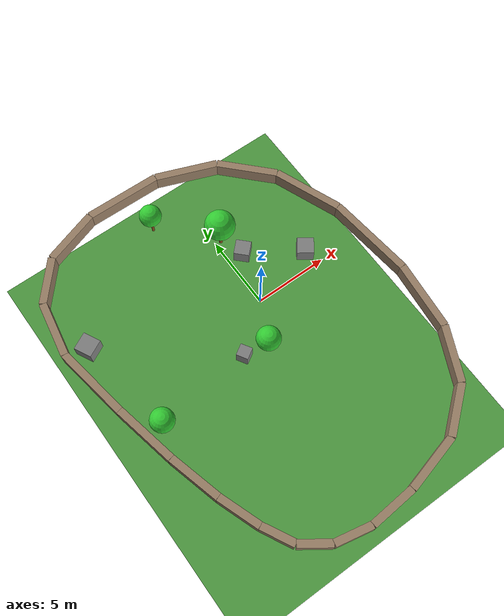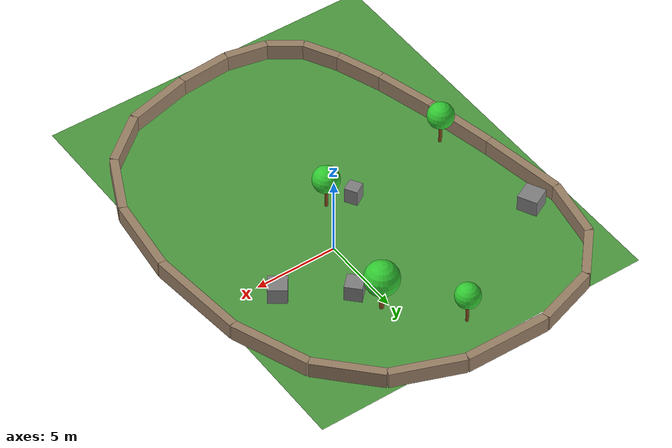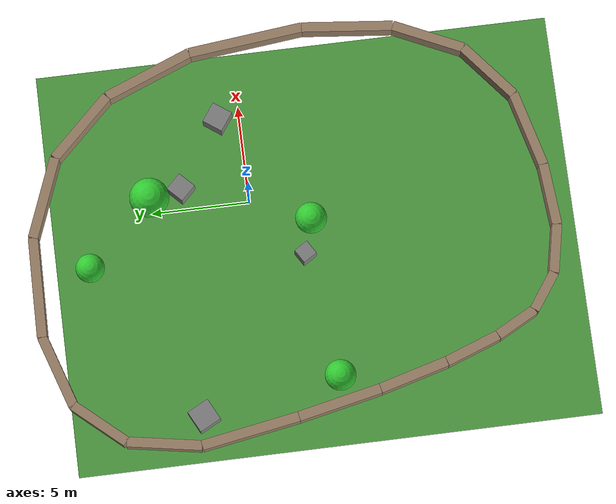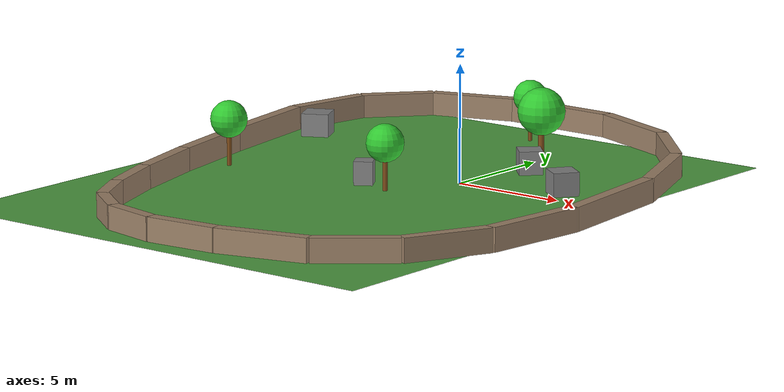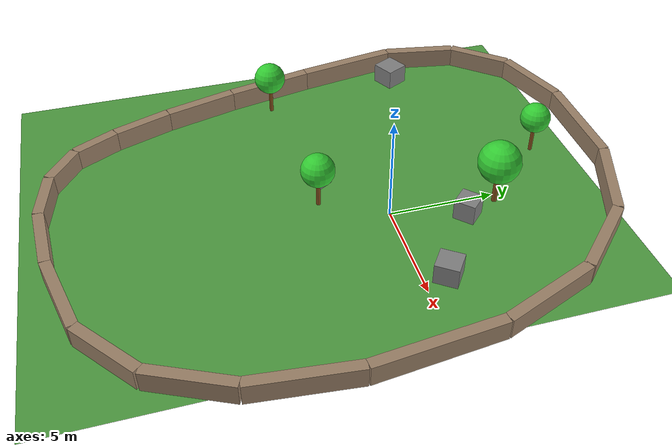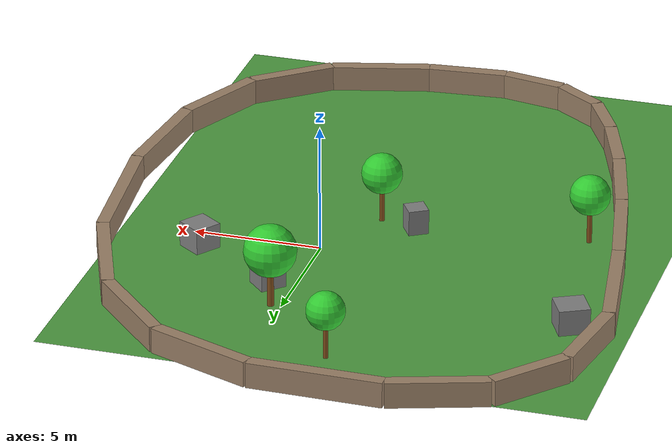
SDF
<?xml version="1.0" ?>
<sdf version="1.6">
  <world name="eval_lvl4_ep000">
    <light name="sun" type="directional">
      <cast_shadows>true</cast_shadows>
      <diffuse>0.8 0.8 0.8 1</diffuse>
      <specular>0.2 0.2 0.2 1</specular>
      <pose>0 0 10 0 0 0</pose>
      <direction>-0.5 0.5 -1</direction>
    </light>
    <include>
      <uri>model://ground_plane</uri>
    </include>
    <physics type="ode">
      <max_step_size>0.001</max_step_size>
      <real_time_factor>1</real_time_factor>
      <real_time_update_rate>1000</real_time_update_rate>
    </physics>
    <gravity>0 0 -9.8</gravity>
    <atmosphere type="adiabatic"/>
    <scene>
      <ambient>0.4 0.4 0.4 1</ambient>
      <background>0.7 0.7 0.7 1</background>
      <shadows>1</shadows>
    </scene>
    <model name="eval_lvl4_ep000_field">
      <static>true</static>
      <link name="link">
        <collision name="collision">
          <geometry>
            <plane>
              <normal>0 0 1</normal>
              <size>20.725738385255347 26.424078271899496</size>
            </plane>
          </geometry>
        </collision>
        <visual name="visual">
          <geometry>
            <plane>
              <normal>0 0 1</normal>
              <size>20.725738385255347 26.424078271899496</size>
            </plane>
          </geometry>
          <material>
            <script>
              <uri>file://media/materials/scripts/gazebo.material</uri>
              <name>Gazebo/Grass</name>
            </script>
          </material>
        </visual>
      </link>
      <pose>-2.541341288482038 -3.0848154407517376 0.01 0 0 0</pose>
    </model>
    <model name="eval_lvl4_ep000_boundary_0">
      <static>true</static>
      <pose>-11.716643249739564 1.3379400346052193 0.5 0 0 -1.4021891578027275</pose>
      <link name="link">
        <collision name="collision">
          <geometry>
            <box>
              <size>5.032900837519444 0.5 1.0</size>
            </box>
          </geometry>
        </collision>
        <visual name="visual">
          <geometry>
            <box>
              <size>5.032900837519444 0.5 1.0</size>
            </box>
          </geometry>
          <material>
            <ambient>0.4 0.3 0.2 1</ambient>
            <diffuse>0.6 0.5 0.4 1</diffuse>
          </material>
        </visual>
      </link>
    </model>
    <model name="eval_lvl4_ep000_boundary_1">
      <static>true</static>
      <pose>-10.845804181789788 -3.2512469907942756 0.5 0 0 -1.361177042258821</pose>
      <link name="link">
        <collision name="collision">
          <geometry>
            <box>
              <size>4.311214079445698 0.5 1.0</size>
            </box>
          </geometry>
        </collision>
        <visual name="visual">
          <geometry>
            <box>
              <size>4.311214079445698 0.5 1.0</size>
            </box>
          </geometry>
          <material>
            <ambient>0.4 0.3 0.2 1</ambient>
            <diffuse>0.6 0.5 0.4 1</diffuse>
          </material>
        </visual>
      </link>
    </model>
    <model name="eval_lvl4_ep000_boundary_2">
      <static>true</static>
      <pose>-9.922423443494903 -7.095744963195127 0.5 0 0 -1.3038204703218987</pose>
      <link name="link">
        <collision name="collision">
          <geometry>
            <box>
              <size>3.599678827739364 0.5 1.0</size>
            </box>
          </geometry>
        </collision>
        <visual name="visual">
          <geometry>
            <box>
              <size>3.599678827739364 0.5 1.0</size>
            </box>
          </geometry>
          <material>
            <ambient>0.4 0.3 0.2 1</ambient>
            <diffuse>0.6 0.5 0.4 1</diffuse>
          </material>
        </visual>
      </link>
    </model>
    <model name="eval_lvl4_ep000_boundary_3">
      <static>true</static>
      <pose>-8.946501034854915 -10.195553882597334 0.5 0 0 -1.218665584326815</pose>
      <link name="link">
        <collision name="collision">
          <geometry>
            <box>
              <size>2.9057620880754538 0.5 1.0</size>
            </box>
          </geometry>
        </collision>
        <visual name="visual">
          <geometry>
            <box>
              <size>2.9057620880754538 0.5 1.0</size>
            </box>
          </geometry>
          <material>
            <ambient>0.4 0.3 0.2 1</ambient>
            <diffuse>0.6 0.5 0.4 1</diffuse>
          </material>
        </visual>
      </link>
    </model>
    <model name="eval_lvl4_ep000_boundary_4">
      <static>true</static>
      <pose>-7.918036955869816 -12.5506737490009 0.5 0 0 -1.0819175631402103</pose>
      <link name="link">
        <collision name="collision">
          <geometry>
            <box>
              <size>2.2458548011114936 0.5 1.0</size>
            </box>
          </geometry>
        </collision>
        <visual name="visual">
          <geometry>
            <box>
              <size>2.2458548011114936 0.5 1.0</size>
            </box>
          </geometry>
          <material>
            <ambient>0.4 0.3 0.2 1</ambient>
            <diffuse>0.6 0.5 0.4 1</diffuse>
          </material>
        </visual>
      </link>
    </model>
    <model name="eval_lvl4_ep000_boundary_5">
      <static>true</static>
      <pose>-6.51535983013412 -14.161476414323825 0.5 0 0 -0.6158433667834012</pose>
      <link name="link">
        <collision name="collision">
          <geometry>
            <box>
              <size>2.1446136738670756 0.5 1.0</size>
            </box>
          </geometry>
        </collision>
        <visual name="visual">
          <geometry>
            <box>
              <size>2.1446136738670756 0.5 1.0</size>
            </box>
          </geometry>
          <material>
            <ambient>0.4 0.3 0.2 1</ambient>
            <diffuse>0.6 0.5 0.4 1</diffuse>
          </material>
        </visual>
      </link>
    </model>
    <model name="eval_lvl4_ep000_boundary_6">
      <static>true</static>
      <pose>-4.416798281242335 -15.028333730484105 0.5 0 0 -0.1995892046702434</pose>
      <link name="link">
        <collision name="collision">
          <geometry>
            <box>
              <size>2.496055179370791 0.5 1.0</size>
            </box>
          </geometry>
        </collision>
        <visual name="visual">
          <geometry>
            <box>
              <size>2.496055179370791 0.5 1.0</size>
            </box>
          </geometry>
          <material>
            <ambient>0.4 0.3 0.2 1</ambient>
            <diffuse>0.6 0.5 0.4 1</diffuse>
          </material>
        </visual>
      </link>
    </model>
    <model name="eval_lvl4_ep000_boundary_7">
      <static>true</static>
      <pose>-1.6223523091944612 -15.151245697481745 0.5 0 0 0.07909307363082047</pose>
      <link name="link">
        <collision name="collision">
          <geometry>
            <box>
              <size>3.1522428099139006 0.5 1.0</size>
            </box>
          </geometry>
        </collision>
        <visual name="visual">
          <geometry>
            <box>
              <size>3.1522428099139006 0.5 1.0</size>
            </box>
          </geometry>
          <material>
            <ambient>0.4 0.3 0.2 1</ambient>
            <diffuse>0.6 0.5 0.4 1</diffuse>
          </material>
        </visual>
      </link>
    </model>
    <model name="eval_lvl4_ep000_boundary_8">
      <static>true</static>
      <pose>1.8679780860095023 -14.530212315316742 0.5 0 0 0.25316096129397947</pose>
      <link name="link">
        <collision name="collision">
          <geometry>
            <box>
              <size>3.9646434433260245 0.5 1.0</size>
            </box>
          </geometry>
        </collision>
        <visual name="visual">
          <geometry>
            <box>
              <size>3.9646434433260245 0.5 1.0</size>
            </box>
          </geometry>
          <material>
            <ambient>0.4 0.3 0.2 1</ambient>
            <diffuse>0.6 0.5 0.4 1</diffuse>
          </material>
        </visual>
      </link>
    </model>
    <model name="eval_lvl4_ep000_boundary_9">
      <static>true</static>
      <pose>5.146657260239897 -12.926811154429693 0.5 0 0 0.6833212702676414</pose>
      <link name="link">
        <collision name="collision">
          <geometry>
            <box>
              <size>3.506325879557085 0.5 1.0</size>
            </box>
          </geometry>
        </collision>
        <visual name="visual">
          <geometry>
            <box>
              <size>3.506325879557085 0.5 1.0</size>
            </box>
          </geometry>
          <material>
            <ambient>0.4 0.3 0.2 1</ambient>
            <diffuse>0.6 0.5 0.4 1</diffuse>
          </material>
        </visual>
      </link>
    </model>
    <model name="eval_lvl4_ep000_boundary_10">
      <static>true</static>
      <pose>7.306149569367066 -10.1026197852612 0.5 0 0 1.134864694508239</pose>
      <link name="link">
        <collision name="collision">
          <geometry>
            <box>
              <size>3.788939252337831 0.5 1.0</size>
            </box>
          </geometry>
        </collision>
        <visual name="visual">
          <geometry>
            <box>
              <size>3.788939252337831 0.5 1.0</size>
            </box>
          </geometry>
          <material>
            <ambient>0.4 0.3 0.2 1</ambient>
            <diffuse>0.6 0.5 0.4 1</diffuse>
          </material>
        </visual>
      </link>
    </model>
    <model name="eval_lvl4_ep000_boundary_11">
      <static>true</static>
      <pose>8.346455013391008 -6.05763820781126 0.5 0 0 1.467901468540507</pose>
      <link name="link">
        <collision name="collision">
          <geometry>
            <box>
              <size>4.680129921858141 0.5 1.0</size>
            </box>
          </geometry>
        </collision>
        <visual name="visual">
          <geometry>
            <box>
              <size>4.680129921858141 0.5 1.0</size>
            </box>
          </geometry>
          <material>
            <ambient>0.4 0.3 0.2 1</ambient>
            <diffuse>0.6 0.5 0.4 1</diffuse>
          </material>
        </visual>
      </link>
    </model>
    <model name="eval_lvl4_ep000_boundary_12">
      <static>true</static>
      <pose>8.267573592311726 -0.791866422079871 0.5 0 0 1.6790267299367911</pose>
      <link name="link">
        <collision name="collision">
          <geometry>
            <box>
              <size>5.910751852036108 0.5 1.0</size>
            </box>
          </geometry>
        </collision>
        <visual name="visual">
          <geometry>
            <box>
              <size>5.910751852036108 0.5 1.0</size>
            </box>
          </geometry>
          <material>
            <ambient>0.4 0.3 0.2 1</ambient>
            <diffuse>0.6 0.5 0.4 1</diffuse>
          </material>
        </visual>
      </link>
    </model>
    <model name="eval_lvl4_ep000_boundary_13">
      <static>true</static>
      <pose>7.071520482873943 4.359171349706305 0.5 0 0 1.9480394196973356</pose>
      <link name="link">
        <collision name="collision">
          <geometry>
            <box>
              <size>4.7606607079342 0.5 1.0</size>
            </box>
          </geometry>
        </collision>
        <visual name="visual">
          <geometry>
            <box>
              <size>4.7606607079342 0.5 1.0</size>
            </box>
          </geometry>
          <material>
            <ambient>0.4 0.3 0.2 1</ambient>
            <diffuse>0.6 0.5 0.4 1</diffuse>
          </material>
        </visual>
      </link>
    </model>
    <model name="eval_lvl4_ep000_boundary_14">
      <static>true</static>
      <pose>4.760310861822388 8.059950885320609 0.5 0 0 2.337912043046842</pose>
      <link name="link">
        <collision name="collision">
          <geometry>
            <box>
              <size>4.133332709781141 0.5 1.0</size>
            </box>
          </geometry>
        </collision>
        <visual name="visual">
          <geometry>
            <box>
              <size>4.133332709781141 0.5 1.0</size>
            </box>
          </geometry>
          <material>
            <ambient>0.4 0.3 0.2 1</ambient>
            <diffuse>0.6 0.5 0.4 1</diffuse>
          </material>
        </visual>
      </link>
    </model>
    <model name="eval_lvl4_ep000_boundary_15">
      <static>true</static>
      <pose>1.333944729157062 10.31047218476304 0.5 0 0 2.7759271700667045</pose>
      <link name="link">
        <collision name="collision">
          <geometry>
            <box>
              <size>4.265985724001284 0.5 1.0</size>
            </box>
          </geometry>
        </collision>
        <visual name="visual">
          <geometry>
            <box>
              <size>4.265985724001284 0.5 1.0</size>
            </box>
          </geometry>
          <material>
            <ambient>0.4 0.3 0.2 1</ambient>
            <diffuse>0.6 0.5 0.4 1</diffuse>
          </material>
        </visual>
      </link>
    </model>
    <model name="eval_lvl4_ep000_boundary_16">
      <static>true</static>
      <pose>-3.2075779151220365 11.1107352480336 0.5 0 0 3.126858976054406</pose>
      <link name="link">
        <collision name="collision">
          <geometry>
            <box>
              <size>5.099654409759224 0.5 1.0</size>
            </box>
          </geometry>
        </collision>
        <visual name="visual">
          <geometry>
            <box>
              <size>5.099654409759224 0.5 1.0</size>
            </box>
          </geometry>
          <material>
            <ambient>0.4 0.3 0.2 1</ambient>
            <diffuse>0.6 0.5 0.4 1</diffuse>
          </material>
        </visual>
      </link>
    </model>
    <model name="eval_lvl4_ep000_boundary_17">
      <static>true</static>
      <pose>-7.56372017360012 10.556286006082797 0.5 0 0 -2.8249225982934245</pose>
      <link name="link">
        <collision name="collision">
          <geometry>
            <box>
              <size>3.802239950653686 0.5 1.0</size>
            </box>
          </geometry>
        </collision>
        <visual name="visual">
          <geometry>
            <box>
              <size>3.802239950653686 0.5 1.0</size>
            </box>
          </geometry>
          <material>
            <ambient>0.4 0.3 0.2 1</ambient>
            <diffuse>0.6 0.5 0.4 1</diffuse>
          </material>
        </visual>
      </link>
    </model>
    <model name="eval_lvl4_ep000_boundary_18">
      <static>true</static>
      <pose>-10.433945148862403 8.74267038986113 0.5 0 0 -2.2871794779622556</pose>
      <link name="link">
        <collision name="collision">
          <geometry>
            <box>
              <size>3.2395188604212373 0.5 1.0</size>
            </box>
          </geometry>
        </collision>
        <visual name="visual">
          <geometry>
            <box>
              <size>3.2395188604212373 0.5 1.0</size>
            </box>
          </geometry>
          <material>
            <ambient>0.4 0.3 0.2 1</ambient>
            <diffuse>0.6 0.5 0.4 1</diffuse>
          </material>
        </visual>
      </link>
    </model>
    <model name="eval_lvl4_ep000_boundary_19">
      <static>true</static>
      <pose>-11.818252840908887 5.669888399368605 0.5 0 0 -1.7423210141159822</pose>
      <link name="link">
        <collision name="collision">
          <geometry>
            <box>
              <size>3.7575040270118873 0.5 1.0</size>
            </box>
          </geometry>
        </collision>
        <visual name="visual">
          <geometry>
            <box>
              <size>3.7575040270118873 0.5 1.0</size>
            </box>
          </geometry>
          <material>
            <ambient>0.4 0.3 0.2 1</ambient>
            <diffuse>0.6 0.5 0.4 1</diffuse>
          </material>
        </visual>
      </link>
    </model>
    <model name="obstacle_0">
      <static>true</static>
      <pose>-3.0486155962397934 -2.491939060370054 0.5 0 0 0.550457211993435</pose>
      <link name="link">
        <collision name="collision">
          <geometry>
            <box>
              <size>0.790702627395942 0.790702627395942 1.0</size>
            </box>
          </geometry>
        </collision>
        <visual name="visual">
          <geometry>
            <box>
              <size>0.790702627395942 0.790702627395942 1.0</size>
            </box>
          </geometry>
          <material>
            <ambient>0.3 0.3 0.3 1</ambient>
            <diffuse>0.5 0.5 0.5 1</diffuse>
          </material>
        </visual>
      </link>
    </model>
    <model name="obstacle_1">
      <static>true</static>
      <pose>4.432052478333063 1.1068029925628728 0.5 0 0 4.092883132498535</pose>
      <link name="link">
        <collision name="collision">
          <geometry>
            <box>
              <size>1.095272987860533 1.095272987860533 1.0</size>
            </box>
          </geometry>
        </collision>
        <visual name="visual">
          <geometry>
            <box>
              <size>1.095272987860533 1.095272987860533 1.0</size>
            </box>
          </geometry>
          <material>
            <ambient>0.3 0.3 0.3 1</ambient>
            <diffuse>0.5 0.5 0.5 1</diffuse>
          </material>
        </visual>
      </link>
    </model>
    <model name="obstacle_2">
      <static>true</static>
      <pose>1.0246096550512611 3.3741714096153856 0.5 0 0 3.9195600073954866</pose>
      <link name="link">
        <collision name="collision">
          <geometry>
            <box>
              <size>1.008207453784335 1.008207453784335 1.0</size>
            </box>
          </geometry>
        </collision>
        <visual name="visual">
          <geometry>
            <box>
              <size>1.008207453784335 1.008207453784335 1.0</size>
            </box>
          </geometry>
          <material>
            <ambient>0.3 0.3 0.3 1</ambient>
            <diffuse>0.5 0.5 0.5 1</diffuse>
          </material>
        </visual>
      </link>
    </model>
    <model name="obstacle_3">
      <static>true</static>
      <pose>-10.665610391023622 3.5501661125157113 0.5 0 0 5.185940653204436</pose>
      <link name="link">
        <collision name="collision">
          <geometry>
            <box>
              <size>1.188792515710676 1.188792515710676 1.0</size>
            </box>
          </geometry>
        </collision>
        <visual name="visual">
          <geometry>
            <box>
              <size>1.188792515710676 1.188792515710676 1.0</size>
            </box>
          </geometry>
          <material>
            <ambient>0.3 0.3 0.3 1</ambient>
            <diffuse>0.5 0.5 0.5 1</diffuse>
          </material>
        </visual>
      </link>
    </model>
    <model name="obstacle_4">
      <static>true</static>
      <pose>-1.559425112109274 -2.956624526120182 1.0 0 0 0.8214578793177488</pose>
      <link name="link">
        <collision name="trunk_collision">
          <geometry>
            <cylinder>
              <radius>0.09938551204573949</radius>
              <length>2.0</length>
            </cylinder>
          </geometry>
        </collision>
        <visual name="trunk_visual">
          <geometry>
            <cylinder>
              <radius>0.09938551204573949</radius>
              <length>2.0</length>
            </cylinder>
          </geometry>
          <material>
            <ambient>0.4 0.2 0.0 1</ambient>
            <diffuse>0.5 0.3 0.1 1</diffuse>
          </material>
        </visual>
        <collision name="crown_collision">
          <pose>0 0 0.9938551204573949 0 0 0</pose>
          <geometry>
            <sphere>
              <radius>0.7950840963659159</radius>
            </sphere>
          </geometry>
        </collision>
        <visual name="crown_visual">
          <pose>0 0 0.9938551204573949 0 0 0</pose>
          <geometry>
            <sphere>
              <radius>0.7950840963659159</radius>
            </sphere>
          </geometry>
          <material>
            <ambient>0.1 0.5 0.1 1</ambient>
            <diffuse>0.2 0.8 0.2 1</diffuse>
          </material>
        </visual>
      </link>
    </model>
    <model name="obstacle_5">
      <static>true</static>
      <pose>0.40509631406701097 4.97463893970901 1.0 0 0 3.832221156036514</pose>
      <link name="link">
        <collision name="trunk_collision">
          <geometry>
            <cylinder>
              <radius>0.12566686992943382</radius>
              <length>2.0</length>
            </cylinder>
          </geometry>
        </collision>
        <visual name="trunk_visual">
          <geometry>
            <cylinder>
              <radius>0.12566686992943382</radius>
              <length>2.0</length>
            </cylinder>
          </geometry>
          <material>
            <ambient>0.4 0.2 0.0 1</ambient>
            <diffuse>0.5 0.3 0.1 1</diffuse>
          </material>
        </visual>
        <collision name="crown_collision">
          <pose>0 0 1.256668699294338 0 0 0</pose>
          <geometry>
            <sphere>
              <radius>1.0053349594354706</radius>
            </sphere>
          </geometry>
        </collision>
        <visual name="crown_visual">
          <pose>0 0 1.256668699294338 0 0 0</pose>
          <geometry>
            <sphere>
              <radius>1.0053349594354706</radius>
            </sphere>
          </geometry>
          <material>
            <ambient>0.1 0.5 0.1 1</ambient>
            <diffuse>0.2 0.8 0.2 1</diffuse>
          </material>
        </visual>
      </link>
    </model>
    <model name="obstacle_6">
      <static>true</static>
      <pose>-2.7391667739980257 8.321427892010316 1.0 0 0 4.535777588985311</pose>
      <link name="link">
        <collision name="trunk_collision">
          <geometry>
            <cylinder>
              <radius>0.0914380302611131</radius>
              <length>2.0</length>
            </cylinder>
          </geometry>
        </collision>
        <visual name="trunk_visual">
          <geometry>
            <cylinder>
              <radius>0.0914380302611131</radius>
              <length>2.0</length>
            </cylinder>
          </geometry>
          <material>
            <ambient>0.4 0.2 0.0 1</ambient>
            <diffuse>0.5 0.3 0.1 1</diffuse>
          </material>
        </visual>
        <collision name="crown_collision">
          <pose>0 0 0.914380302611131 0 0 0</pose>
          <geometry>
            <sphere>
              <radius>0.7315042420889049</radius>
            </sphere>
          </geometry>
        </collision>
        <visual name="crown_visual">
          <pose>0 0 0.914380302611131 0 0 0</pose>
          <geometry>
            <sphere>
              <radius>0.7315042420889049</radius>
            </sphere>
          </geometry>
          <material>
            <ambient>0.1 0.5 0.1 1</ambient>
            <diffuse>0.2 0.8 0.2 1</diffuse>
          </material>
        </visual>
      </link>
    </model>
    <model name="obstacle_7">
      <static>true</static>
      <pose>-9.618443128556184 -3.4198145051250375 1.0 0 0 5.354380244265556</pose>
      <link name="link">
        <collision name="trunk_collision">
          <geometry>
            <cylinder>
              <radius>0.09790684645127107</radius>
              <length>2.0</length>
            </cylinder>
          </geometry>
        </collision>
        <visual name="trunk_visual">
          <geometry>
            <cylinder>
              <radius>0.09790684645127107</radius>
              <length>2.0</length>
            </cylinder>
          </geometry>
          <material>
            <ambient>0.4 0.2 0.0 1</ambient>
            <diffuse>0.5 0.3 0.1 1</diffuse>
          </material>
        </visual>
        <collision name="crown_collision">
          <pose>0 0 0.9790684645127106 0 0 0</pose>
          <geometry>
            <sphere>
              <radius>0.7832547716101685</radius>
            </sphere>
          </geometry>
        </collision>
        <visual name="crown_visual">
          <pose>0 0 0.9790684645127106 0 0 0</pose>
          <geometry>
            <sphere>
              <radius>0.7832547716101685</radius>
            </sphere>
          </geometry>
          <material>
            <ambient>0.1 0.5 0.1 1</ambient>
            <diffuse>0.2 0.8 0.2 1</diffuse>
          </material>
        </visual>
      </link>
    </model>
    <plugin name="gazebo_ros_state" filename="libgazebo_ros_state.so">
      <ros>
        <namespace>/</namespace>
      </ros>
    </plugin>
  </world>
</sdf>
